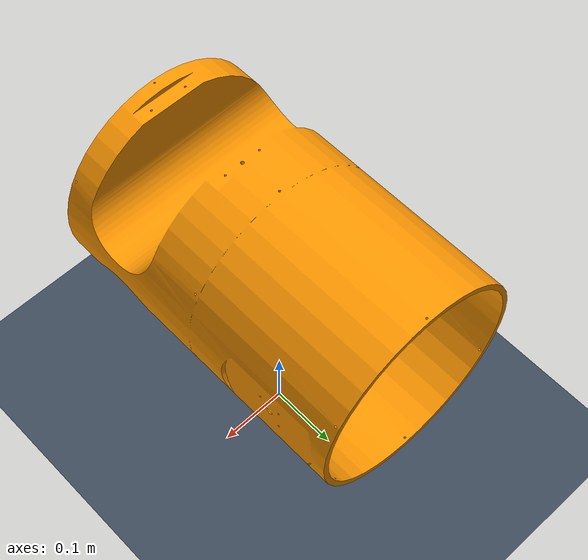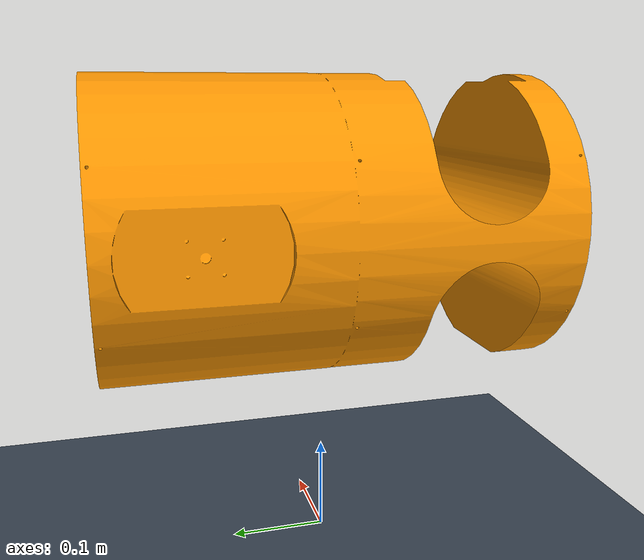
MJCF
<mujoco model="solidworks_export_view">
  <compiler angle="radian" meshdir="meshes"/>

  <option timestep="0.002" gravity="0 0 -9.81"/>

  <asset>
    <mesh name="base_link_mesh" file="base_link.STL"/>
    <texture name="grid" type="2d" builtin="checker" width="512" height="512"
             rgb1="0.18 0.22 0.27" rgb2="0.28 0.34 0.40"/>
    <material name="grid" texture="grid" texrepeat="8 8" reflectance="0.15"/>
    <material name="cabin_yellow" rgba="0.96863 0.57647 0 1"/>
  </asset>

  <worldbody>
    <light pos="0 -3 3" dir="0 1 -1" diffuse="0.8 0.8 0.8"/>
    <camera name="view" pos="0 -1.2 0.55" xyaxes="1 0 0 0 0.45 0.89"/>
    <geom name="floor" type="plane" size="2 2 0.02" material="grid"/>

    <body name="base_link" pos="0 0 0.35">
      <freejoint/>
      <inertial pos="-1.0184e-07 -3.545e-09 0.014199"
                mass="3.4609"
                fullinertia="0.035738 0.045774 0.051746 -0.00027831 -4.3464e-08 -2.8717e-08"/>
      <geom name="base_link_visual" type="mesh" mesh="base_link_mesh"
            material="cabin_yellow" contype="0" conaffinity="0"/>
      <geom name="base_link_collision" type="mesh" mesh="base_link_mesh"
            rgba="0.96863 0.57647 0 0.2"/>
    </body>
  </worldbody>
</mujoco>
